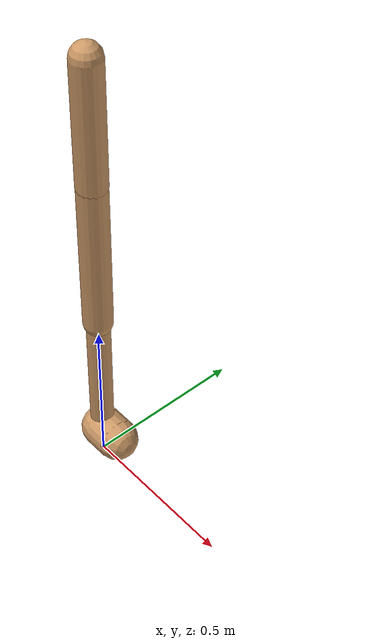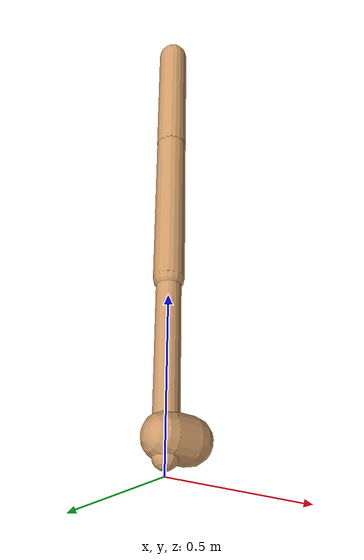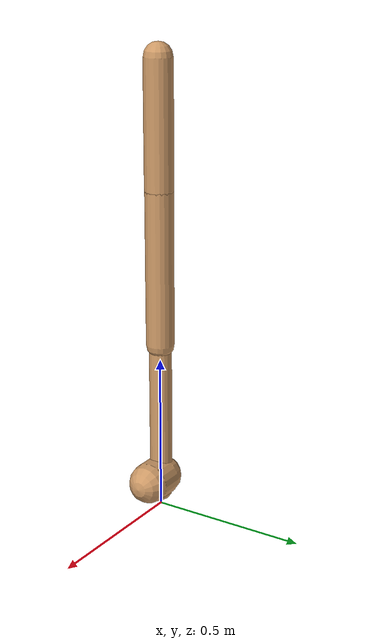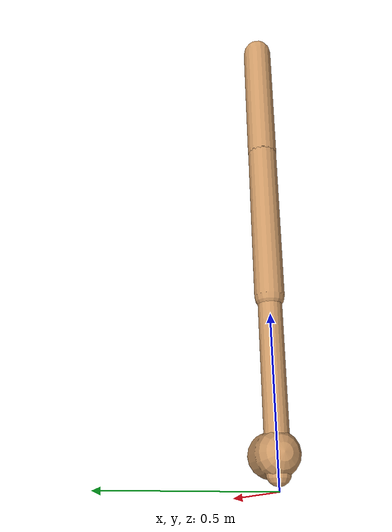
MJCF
<mujoco model="walker2d">
  <compiler angle="degree" coordinate="global" inertiafromgeom="true" />
  <default>
    <joint armature="0.01" damping=".1" limited="true" />
    <geom conaffinity="0" condim="3" contype="1" density="1000" friction="0.8 .1 .1" rgba="0.8 0.6 .4 1" />
  </default>
  <option integrator="RK4" timestep="0.002" />
  <worldbody>

    <body name="torso" pos="0 0 0.0957949768606961">
      <joint armature="0" axis="1 0 0" damping="0" limited="false" name="ignorex" pos="0 0 0" stiffness="0" type="slide" />
      <joint armature="0" axis="0 0 1" damping="0" limited="false" name="ignorez" pos="0 0 0" ref="1.25" stiffness="0" type="slide" />
      <joint armature="0" axis="0 1 0" damping="0" limited="false" name="ignorey" pos="0 0 0" stiffness="0" type="hinge" />
      <geom fromto="0 0 1.45 0 0 1.05" name="torso_geom" size="0.045470047192532725" type="capsule" />
      <body name="thigh">
        <joint axis="0 -1 0" name="thigh_joint" pos="0 0 1.05" range="-150 0" type="hinge" />
        <geom fromto="0.0 0.0 1.05 0.0 0.0 0.5546234320133545" name="thigh_geom" size="0.044739494618132335" type="capsule" />
        <body name="leg" pos="0.0 0.0 -0.045376567986645466">
          <joint axis="0 -1 0" name="leg_joint" pos="0 0 0.6" range="-150 0" type="hinge" />
          <geom fromto="0.0 0.0 0.6 0.0 0.0 0.04958159112594943" name="leg_geom" size="0.035791595694505865" type="capsule" />
          <body name="foot" pos="0.0 0.0 -0.05041840887405057">
            <joint axis="0 -1 0" name="foot_joint" pos="0 0 0.1" range="-45 45" type="hinge" />
            <geom fromto="0.0 0.0 0.1 0.06858624708302359 0.0 0.1" name="foot_geom" size="0.06513896220903855" type="capsule" />
          </body>
        </body>
      </body>

      <body name="thigh_left">
        <joint axis="0 -1 0" name="thigh_left_joint" pos="0 0 1.05" range="-150 0" type="hinge" />
        <geom fromto="0.0 0.0 1.05 0.0 0.0 0.5546234320133545" name="thigh_left_geom" rgba=".7 .3 .6 1" size="0.044739494618132335" type="capsule" />
        <body name="leg_left" pos="0.0 0.0 -0.045376567986645466">
          <joint axis="0 -1 0" name="leg_left_joint" pos="0 0 0.6" range="-150 0" type="hinge" />
          <geom fromto="0.0 0.0 0.6 0.0 0.0 0.04958159112594943" name="leg_left_geom" rgba=".7 .3 .6 1" size="0.035791595694505865" type="capsule" />
          <body name="foot_left" pos="0.0 0.0 -0.05041840887405057">
            <joint axis="0 -1 0" name="foot_left_joint" pos="0 0 0.1" range="-45 45" type="hinge" />
            <geom fromto="0.0 0.0 0.1 0.06858624708302359 0.0 0.1" name="foot_left_geom" rgba=".7 .3 .6 1" size="0.06513896220903855" type="capsule" />
          </body>
        </body>
      </body>
    </body>
  </worldbody>
  <actuator>

    <motor ctrllimited="true" ctrlrange="-1.0 1.0" gear="100" joint="thigh_joint" />
    <motor ctrllimited="true" ctrlrange="-1.0 1.0" gear="100" joint="leg_joint" />
    <motor ctrllimited="true" ctrlrange="-1.0 1.0" gear="100" joint="foot_joint" />
    <motor ctrllimited="true" ctrlrange="-1.0 1.0" gear="100" joint="thigh_left_joint" />
    <motor ctrllimited="true" ctrlrange="-1.0 1.0" gear="100" joint="leg_left_joint" />
    <motor ctrllimited="true" ctrlrange="-1.0 1.0" gear="100" joint="foot_left_joint" />

  </actuator>
</mujoco>
